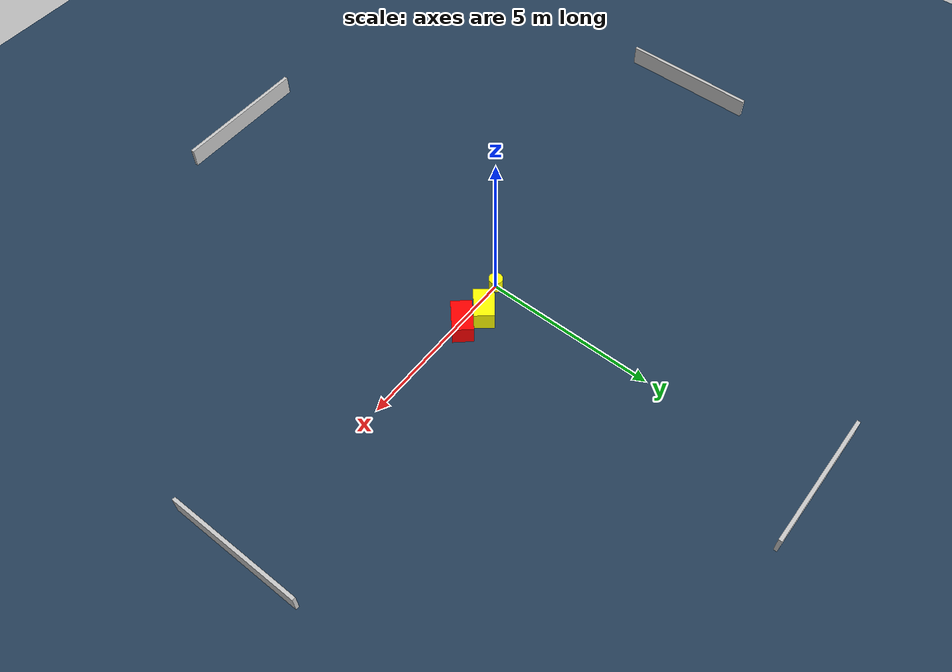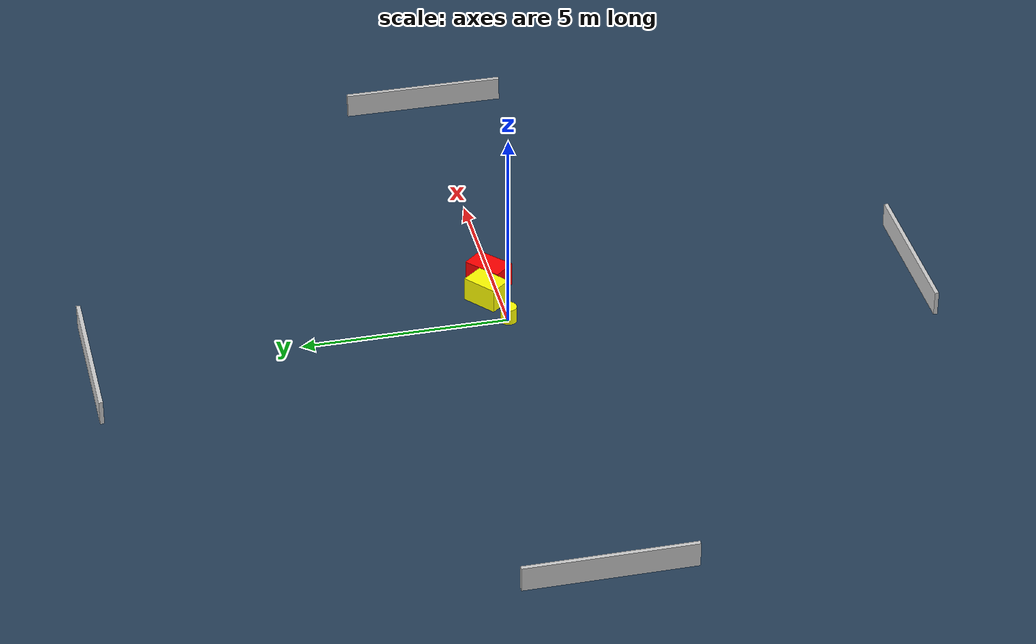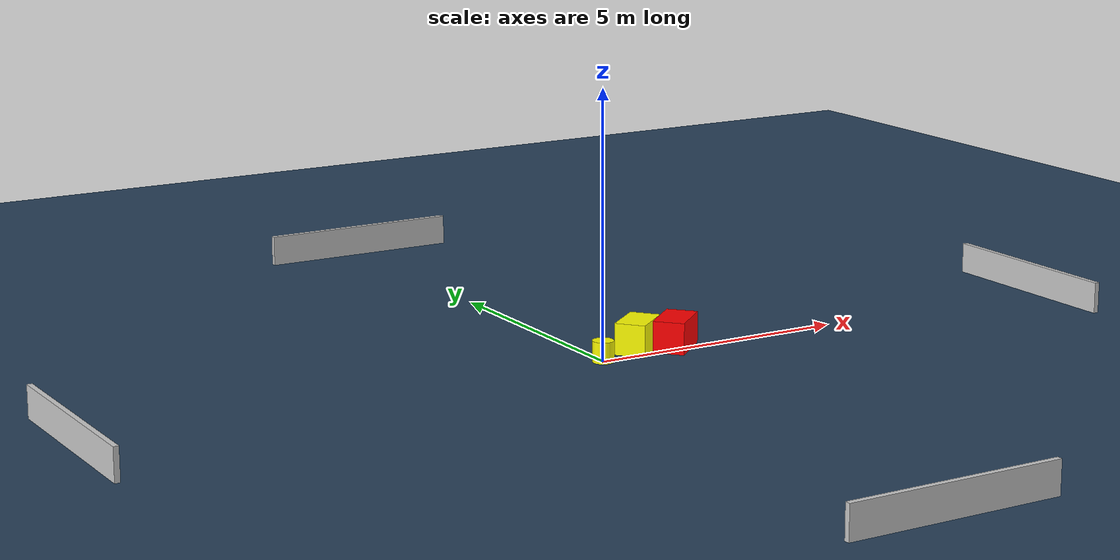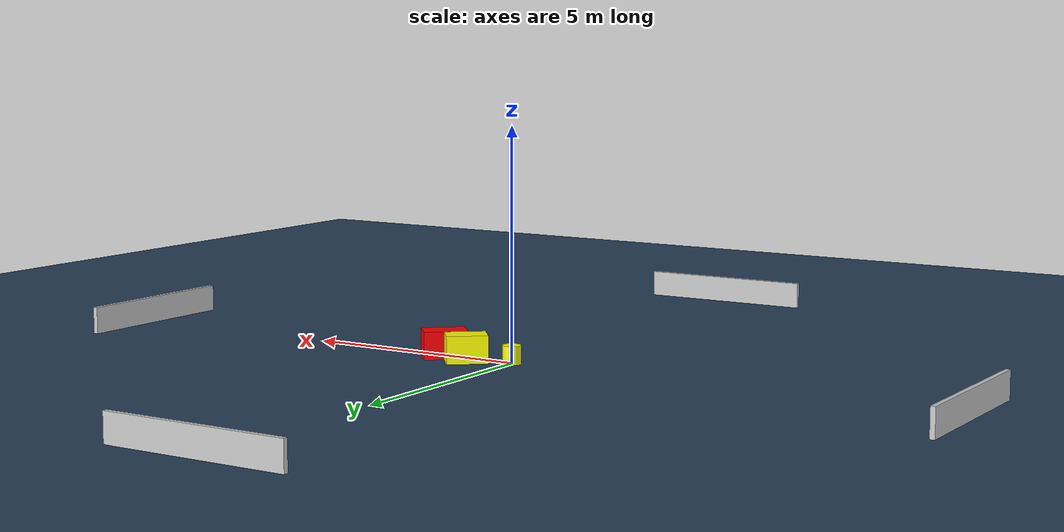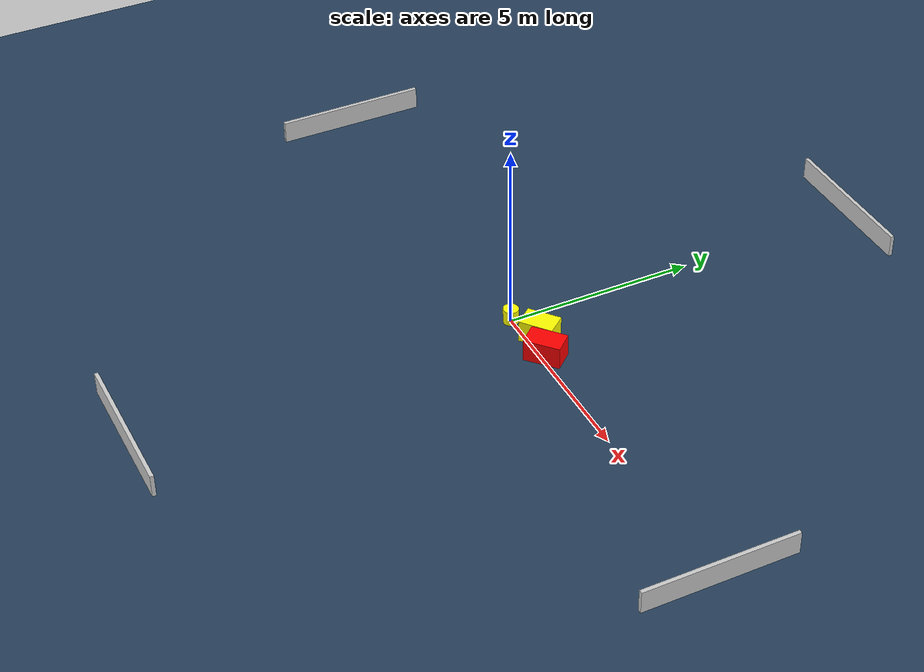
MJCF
<?xml version="1.0" ?>
<mujoco model="generated_environment">
  <option timestep="0.01" integrator="RK4" cone="elliptic"/>
  <default>
    <geom density="1"/>
  </default>
  <asset>
    <texture builtin="gradient" height="3072" name="skybox" rgb1="0.3 0.5 0.7" rgb2="0 0 0" type="skybox" width="512"/>
    <texture builtin="checker" height="300" name="groundplane" rgb1="0.2 0.3 0.4" rgb2="0.1 0.2 0.3" type="2d" width="300"/>
    <material name="groundplane" reflectance="0.2" texrepeat="5 5" texture="groundplane"/>
  </asset>
  <worldbody>
    <light dir="0 0 -1" directional="true" pos="0 0 1.5"/>
    <geom condim="3" friction="0.5 0.005 0.001" material="groundplane" name="floor" pos="0 0 0" size="0 0 0.05" type="plane"/>
    <body name="walls">
      <geom name="wall_1" condim="4" pos="-10.0 0.0 0.3" rgba="0.800000011920929 0.800000011920929 0.800000011920929 1.0" size="0.05 2.0 0.3" type="box"/>
      <geom name="wall_2" condim="4" pos="10.0 0.0 0.3" rgba="0.800000011920929 0.800000011920929 0.800000011920929 1.0" size="0.05 2.0 0.3" type="box"/>
      <geom name="wall_3" condim="4" pos="0.0 -10.0 0.3" rgba="0.800000011920929 0.800000011920929 0.800000011920929 1.0" size="2.0 0.05 0.3" type="box"/>
      <geom name="wall_4" condim="4" pos="0.0 10.0 0.3" rgba="0.800000011920929 0.800000011920929 0.800000011920929 1.0" size="2.0 0.05 0.3" type="box"/>
    </body>
    <body name="robot">
      <joint name="joint_x" type="slide" pos="0 0 0" axis="1 0 0"/>
      <joint name="joint_y" type="slide" pos="0 0 0" axis="0 1 0"/>
      <geom name="robot" type="cylinder" pos="0.0 0.0 0.2" size="0.2 0.2 0.0" mass="5.0" friction="1.0 0.005 0.0001" condim="4" rgba="1.0 1.0 0.0 1.0"/>
    </body>
    <body name="obstacle_1_movable">
      <geom name="obstacle_1_movable" condim="4" pos="0.9381496006030088 0.32500842655525397 0.3" euler="0 0 129.0868713413689" friction="0.0 0.005 0.001" rgba="1.0 1.0 0.0 1.0" size="0.2909968368045873 0.4438993846493131 0.3" type="box" mass="0.1"/>
      <joint type="free"/>
    </body>
    <body name="obstacle_2_static">
      <geom name="obstacle_2_static" condim="4" pos="1.6296124578530466 0.12094459996334356 0.3" euler="0 0 311.6506435028317" friction="0.0 0.005 0.001" rgba="1.0 0.0 0.0 1.0" size="0.29757967963297716 0.4750475750620267 0.3" type="box"/>
    </body>
  </worldbody>
  <actuator>
    <motor name="actuator_x" joint="joint_x" gear="1" ctrlrange="-1 1"/>
    <motor name="actuator_y" joint="joint_y" gear="1" ctrlrange="-1 1"/>
  </actuator>
</mujoco>
